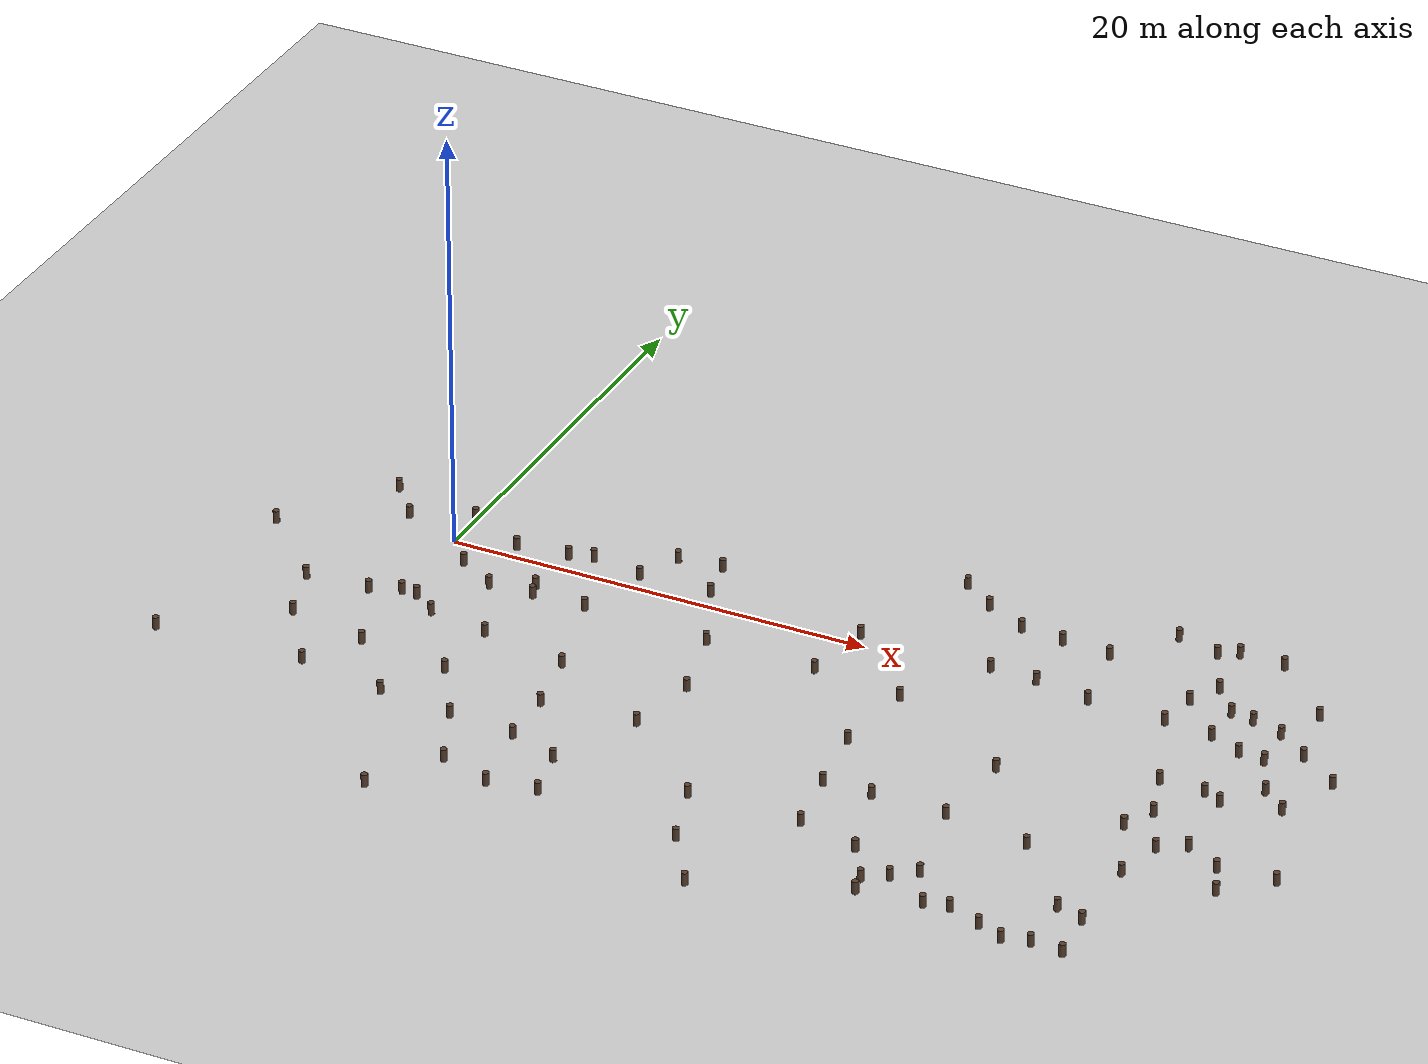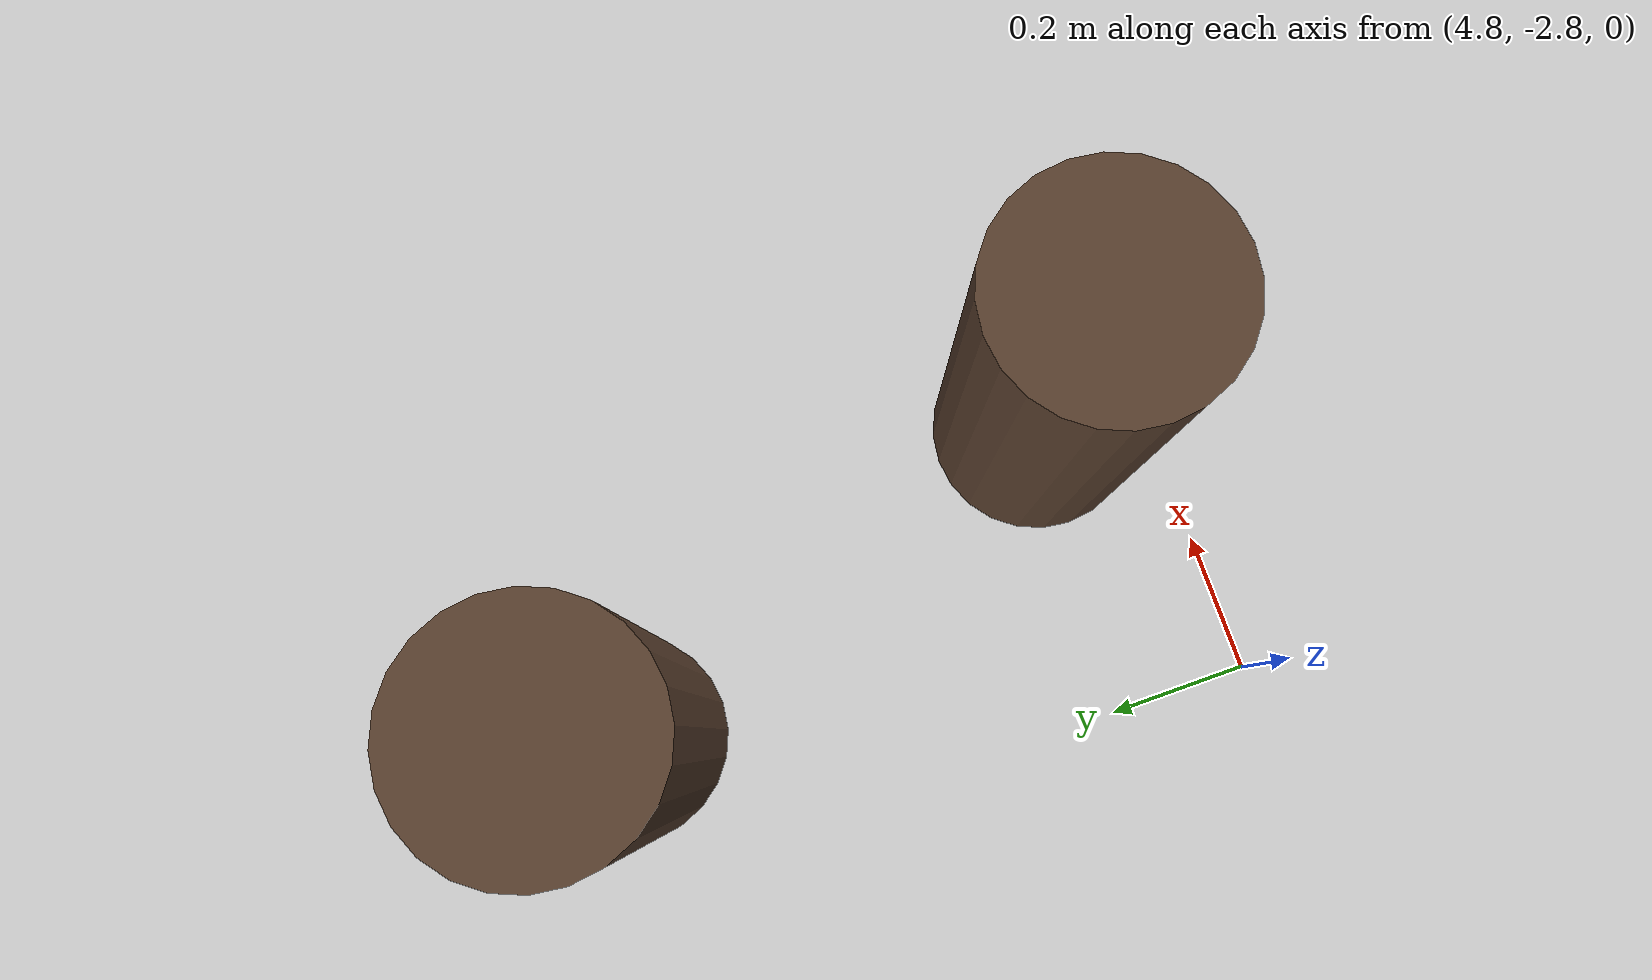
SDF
<?xml version="1.0"?>
<sdf version="1.6">
  <world name="orchard_world">
    <include>
      <uri>model://sun</uri>
    </include>

    <include>
      <uri>model://ground_plane</uri>
    </include>

    <!-- Trees: 103 includes of model://tree_trunk -->
    <include>
      <uri>model://tree_trunk</uri>
      <name>tree_0000</name>
      <pose>21.377842 -20.121744 0 0 0 0</pose>
    </include>
    <include>
      <uri>model://tree_trunk</uri>
      <name>tree_0001</name>
      <pose>5.930867 -19.317856 0 0 0 0</pose>
    </include>
    <include>
      <uri>model://tree_trunk</uri>
      <name>tree_0002</name>
      <pose>34.886902 -18.229172 0 0 0 0</pose>
    </include>
    <include>
      <uri>model://tree_trunk</uri>
      <name>tree_0003</name>
      <pose>37.587269 -18.059940 0 0 0 0</pose>
    </include>
    <include>
      <uri>model://tree_trunk</uri>
      <name>tree_0004</name>
      <pose>36.113663 -17.942070 0 0 0 0</pose>
    </include>
    <include>
      <uri>model://tree_trunk</uri>
      <name>tree_0005</name>
      <pose>33.648663 -17.695705 0 0 0 0</pose>
    </include>
    <include>
      <uri>model://tree_trunk</uri>
      <name>tree_0006</name>
      <pose>27.984146 -17.581209 0 0 0 0</pose>
    </include>
    <include>
      <uri>model://tree_trunk</uri>
      <name>tree_0007</name>
      <pose>30.914196 -17.277401 0 0 0 0</pose>
    </include>
    <include>
      <uri>model://tree_trunk</uri>
      <name>tree_0008</name>
      <pose>19.544012 -17.257883 0 0 0 0</pose>
    </include>
    <include>
      <uri>model://tree_trunk</uri>
      <name>tree_0009</name>
      <pose>32.050774 -17.055559 0 0 0 0</pose>
    </include>
    <include>
      <uri>model://tree_trunk</uri>
      <name>tree_0010</name>
      <pose>10.453001 -16.954826 0 0 0 0</pose>
    </include>
    <include>
      <uri>model://tree_trunk</uri>
      <name>tree_0011</name>
      <pose>27.781012 -16.670900 0 0 0 0</pose>
    </include>
    <include>
      <uri>model://tree_trunk</uri>
      <name>tree_0012</name>
      <pose>12.739023 -16.621220 0 0 0 0</pose>
    </include>
    <include>
      <uri>model://tree_trunk</uri>
      <name>tree_0013</name>
      <pose>7.987421 -16.095158 0 0 0 0</pose>
    </include>
    <include>
      <uri>model://tree_trunk</uri>
      <name>tree_0014</name>
      <pose>28.807619 -16.031342 0 0 0 0</pose>
    </include>
    <include>
      <uri>model://tree_trunk</uri>
      <name>tree_0015</name>
      <pose>37.316322 -15.512968 0 0 0 0</pose>
    </include>
    <include>
      <uri>model://tree_trunk</uri>
      <name>tree_0016</name>
      <pose>29.829248 -15.232237 0 0 0 0</pose>
    </include>
    <include>
      <uri>model://tree_trunk</uri>
      <name>tree_0017</name>
      <pose>35.994633 -15.060971 0 0 0 0</pose>
    </include>
    <include>
      <uri>model://tree_trunk</uri>
      <name>tree_0018</name>
      <pose>26.598637 -14.702311 0 0 0 0</pose>
    </include>
    <include>
      <uri>model://tree_trunk</uri>
      <name>tree_0019</name>
      <pose>12.146017 -14.067697 0 0 0 0</pose>
    </include>
    <include>
      <uri>model://tree_trunk</uri>
      <name>tree_0020</name>
      <pose>18.469704 -14.043028 0 0 0 0</pose>
    </include>
    <include>
      <uri>model://tree_trunk</uri>
      <name>tree_0021</name>
      <pose>23.684628 -13.908031 0 0 0 0</pose>
    </include>
    <include>
      <uri>model://tree_trunk</uri>
      <name>tree_0022</name>
      <pose>9.741977 -13.172966 0 0 0 0</pose>
    </include>
    <include>
      <uri>model://tree_trunk</uri>
      <name>tree_0023</name>
      <pose>6.590414 -12.877033 0 0 0 0</pose>
    </include>
    <include>
      <uri>model://tree_trunk</uri>
      <name>tree_0024</name>
      <pose>3.031172 -12.509090 0 0 0 0</pose>
    </include>
    <include>
      <uri>model://tree_trunk</uri>
      <name>tree_0025</name>
      <pose>-8.162579 -12.150883 0 0 0 0</pose>
    </include>
    <include>
      <uri>model://tree_trunk</uri>
      <name>tree_0026</name>
      <pose>-1.162973 -11.796550 0 0 0 0</pose>
    </include>
    <include>
      <uri>model://tree_trunk</uri>
      <name>tree_0027</name>
      <pose>37.272625 -11.493565 0 0 0 0</pose>
    </include>
    <include>
      <uri>model://tree_trunk</uri>
      <name>tree_0028</name>
      <pose>32.881683 -11.339239 0 0 0 0</pose>
    </include>
    <include>
      <uri>model://tree_trunk</uri>
      <name>tree_0029</name>
      <pose>41.363476 -11.078897 0 0 0 0</pose>
    </include>
    <include>
      <uri>model://tree_trunk</uri>
      <name>tree_0030</name>
      <pose>28.894470 -10.727442 0 0 0 0</pose>
    </include>
    <include>
      <uri>model://tree_trunk</uri>
      <name>tree_0031</name>
      <pose>23.165829 -10.709417 0 0 0 0</pose>
    </include>
    <include>
      <uri>model://tree_trunk</uri>
      <name>tree_0032</name>
      <pose>25.420527 -10.699861 0 0 0 0</pose>
    </include>
    <include>
      <uri>model://tree_trunk</uri>
      <name>tree_0033</name>
      <pose>9.608891 -10.346026 0 0 0 0</pose>
    </include>
    <include>
      <uri>model://tree_trunk</uri>
      <name>tree_0034</name>
      <pose>14.005323 -9.959079 0 0 0 0</pose>
    </include>
    <include>
      <uri>model://tree_trunk</uri>
      <name>tree_0035</name>
      <pose>4.679366 -9.755652 0 0 0 0</pose>
    </include>
    <include>
      <uri>model://tree_trunk</uri>
      <name>tree_0036</name>
      <pose>40.704185 -9.491678 0 0 0 0</pose>
    </include>
    <include>
      <uri>model://tree_trunk</uri>
      <name>tree_0037</name>
      <pose>43.310867 -9.293342 0 0 0 0</pose>
    </include>
    <include>
      <uri>model://tree_trunk</uri>
      <name>tree_0038</name>
      <pose>0.364015 -9.262537 0 0 0 0</pose>
    </include>
    <include>
      <uri>model://tree_trunk</uri>
      <name>tree_0039</name>
      <pose>37.801819 -9.187380 0 0 0 0</pose>
    </include>
    <include>
      <uri>model://tree_trunk</uri>
      <name>tree_0040</name>
      <pose>38.983864 -8.502524 0 0 0 0</pose>
    </include>
    <include>
      <uri>model://tree_trunk</uri>
      <name>tree_0041</name>
      <pose>-3.441047 -8.448119 0 0 0 0</pose>
    </include>
    <include>
      <uri>model://tree_trunk</uri>
      <name>tree_0042</name>
      <pose>35.896111 -8.164883 0 0 0 0</pose>
    </include>
    <include>
      <uri>model://tree_trunk</uri>
      <name>tree_0043</name>
      <pose>22.662876 -7.266358 0 0 0 0</pose>
    </include>
    <include>
      <uri>model://tree_trunk</uri>
      <name>tree_0044</name>
      <pose>9.005826 -7.154064 0 0 0 0</pose>
    </include>
    <include>
      <uri>model://tree_trunk</uri>
      <name>tree_0045</name>
      <pose>36.591274 -6.727829 0 0 0 0</pose>
    </include>
    <include>
      <uri>model://tree_trunk</uri>
      <name>tree_0046</name>
      <pose>14.659624 -6.498687 0 0 0 0</pose>
    </include>
    <include>
      <uri>model://tree_trunk</uri>
      <name>tree_0047</name>
      <pose>29.235010 -6.487582 0 0 0 0</pose>
    </include>
    <include>
      <uri>model://tree_trunk</uri>
      <name>tree_0048</name>
      <pose>4.844571 -6.353862 0 0 0 0</pose>
    </include>
    <include>
      <uri>model://tree_trunk</uri>
      <name>tree_0049</name>
      <pose>1.946399 -5.835737 0 0 0 0</pose>
    </include>
    <include>
      <uri>model://tree_trunk</uri>
      <name>tree_0050</name>
      <pose>-4.366924 -5.560650 0 0 0 0</pose>
    </include>
    <include>
      <uri>model://tree_trunk</uri>
      <name>tree_0051</name>
      <pose>-1.381415 -5.370376 0 0 0 0</pose>
    </include>
    <include>
      <uri>model://tree_trunk</uri>
      <name>tree_0052</name>
      <pose>0.727469 -4.891038 0 0 0 0</pose>
    </include>
    <include>
      <uri>model://tree_trunk</uri>
      <name>tree_0053</name>
      <pose>-0.011154 -4.845277 0 0 0 0</pose>
    </include>
    <include>
      <uri>model://tree_trunk</uri>
      <name>tree_0054</name>
      <pose>38.774067 -4.801353 0 0 0 0</pose>
    </include>
    <include>
      <uri>model://tree_trunk</uri>
      <name>tree_0055</name>
      <pose>37.897789 -4.366522 0 0 0 0</pose>
    </include>
    <include>
      <uri>model://tree_trunk</uri>
      <name>tree_0056</name>
      <pose>35.796585 -4.315566 0 0 0 0</pose>
    </include>
    <include>
      <uri>model://tree_trunk</uri>
      <name>tree_0057</name>
      <pose>41.367760 -4.232024 0 0 0 0</pose>
    </include>
    <include>
      <uri>model://tree_trunk</uri>
      <name>tree_0058</name>
      <pose>23.167639 -3.159774 0 0 0 0</pose>
    </include>
    <include>
      <uri>model://tree_trunk</uri>
      <name>tree_0059</name>
      <pose>40.124405 -3.127106 0 0 0 0</pose>
    </include>
    <include>
      <uri>model://tree_trunk</uri>
      <name>tree_0060</name>
      <pose>18.910484 -2.766523 0 0 0 0</pose>
    </include>
    <include>
      <uri>model://tree_trunk</uri>
      <name>tree_0061</name>
      <pose>13.728316 -2.757223 0 0 0 0</pose>
    </include>
    <include>
      <uri>model://tree_trunk</uri>
      <name>tree_0062</name>
      <pose>3.156880 -2.737474 0 0 0 0</pose>
    </include>
    <include>
      <uri>model://tree_trunk</uri>
      <name>tree_0063</name>
      <pose>5.232767 -2.640633 0 0 0 0</pose>
    </include>
    <include>
      <uri>model://tree_trunk</uri>
      <name>tree_0064</name>
      <pose>7.729800 -2.560039 0 0 0 0</pose>
    </include>
    <include>
      <uri>model://tree_trunk</uri>
      <name>tree_0065</name>
      <pose>-7.830864 -1.974111 0 0 0 0</pose>
    </include>
    <include>
      <uri>model://tree_trunk</uri>
      <name>tree_0066</name>
      <pose>5.002844 -1.923335 0 0 0 0</pose>
    </include>
    <include>
      <uri>model://tree_trunk</uri>
      <name>tree_0067</name>
      <pose>1.271444 -1.534753 0 0 0 0</pose>
    </include>
    <include>
      <uri>model://tree_trunk</uri>
      <name>tree_0068</name>
      <pose>42.459793 -1.414577 0 0 0 0</pose>
    </include>
    <include>
      <uri>model://tree_trunk</uri>
      <name>tree_0069</name>
      <pose>39.148071 -1.001817 0 0 0 0</pose>
    </include>
    <include>
      <uri>model://tree_trunk</uri>
      <name>tree_0070</name>
      <pose>37.927887 -0.869176 0 0 0 0</pose>
    </include>
    <include>
      <uri>model://tree_trunk</uri>
      <name>tree_0071</name>
      <pose>36.354004 -0.160259 0 0 0 0</pose>
    </include>
    <include>
      <uri>model://tree_trunk</uri>
      <name>tree_0072</name>
      <pose>40.516308 0.038896 0 0 0 0</pose>
    </include>
    <include>
      <uri>model://tree_trunk</uri>
      <name>tree_0073</name>
      <pose>34.084187 0.058502 0 0 0 0</pose>
    </include>
    <include>
      <uri>model://tree_trunk</uri>
      <name>tree_0074</name>
      <pose>30.469440 0.134880 0 0 0 0</pose>
    </include>
    <include>
      <uri>model://tree_trunk</uri>
      <name>tree_0075</name>
      <pose>27.834452 0.592652 0 0 0 0</pose>
    </include>
    <include>
      <uri>model://tree_trunk</uri>
      <name>tree_0076</name>
      <pose>25.645279 0.657190 0 0 0 0</pose>
    </include>
    <include>
      <uri>model://tree_trunk</uri>
      <name>tree_0077</name>
      <pose>19.472973 0.673376 0 0 0 0</pose>
    </include>
    <include>
      <uri>model://tree_trunk</uri>
      <name>tree_0078</name>
      <pose>2.742132 0.682405 0 0 0 0</pose>
    </include>
    <include>
      <uri>model://tree_trunk</uri>
      <name>tree_0079</name>
      <pose>8.709839 0.815817 0 0 0 0</pose>
    </include>
    <include>
      <uri>model://tree_trunk</uri>
      <name>tree_0080</name>
      <pose>12.106457 0.910330 0 0 0 0</pose>
    </include>
    <include>
      <uri>model://tree_trunk</uri>
      <name>tree_0081</name>
      <pose>5.147019 0.963361 0 0 0 0</pose>
    </include>
    <include>
      <uri>model://tree_trunk</uri>
      <name>tree_0082</name>
      <pose>-2.767682 1.005253 0 0 0 0</pose>
    </include>
    <include>
      <uri>model://tree_trunk</uri>
      <name>tree_0083</name>
      <pose>38.962769 1.226704 0 0 0 0</pose>
    </include>
    <include>
      <uri>model://tree_trunk</uri>
      <name>tree_0084</name>
      <pose>6.236626 1.283653 0 0 0 0</pose>
    </include>
    <include>
      <uri>model://tree_trunk</uri>
      <name>tree_0085</name>
      <pose>37.458435 1.719093 0 0 0 0</pose>
    </include>
    <include>
      <uri>model://tree_trunk</uri>
      <name>tree_0086</name>
      <pose>36.366333 1.893331 0 0 0 0</pose>
    </include>
    <include>
      <uri>model://tree_trunk</uri>
      <name>tree_0087</name>
      <pose>34.390522 2.019416 0 0 0 0</pose>
    </include>
    <include>
      <uri>model://tree_trunk</uri>
      <name>tree_0088</name>
      <pose>-0.044158 2.100175 0 0 0 0</pose>
    </include>
    <include>
      <uri>model://tree_trunk</uri>
      <name>tree_0089</name>
      <pose>9.582534 2.817138 0 0 0 0</pose>
    </include>
    <include>
      <uri>model://tree_trunk</uri>
      <name>tree_0090</name>
      <pose>-4.259954 2.842739 0 0 0 0</pose>
    </include>
    <include>
      <uri>model://tree_trunk</uri>
      <name>tree_0091</name>
      <pose>11.653130 3.024271 0 0 0 0</pose>
    </include>
    <include>
      <uri>model://tree_trunk</uri>
      <name>tree_0092</name>
      <pose>39.859497 3.294459 0 0 0 0</pose>
    </include>
    <include>
      <uri>model://tree_trunk</uri>
      <name>tree_0093</name>
      <pose>35.149128 3.456811 0 0 0 0</pose>
    </include>
    <include>
      <uri>model://tree_trunk</uri>
      <name>tree_0094</name>
      <pose>29.804314 3.868732 0 0 0 0</pose>
    </include>
    <include>
      <uri>model://tree_trunk</uri>
      <name>tree_0095</name>
      <pose>27.507050 4.040522 0 0 0 0</pose>
    </include>
    <include>
      <uri>model://tree_trunk</uri>
      <name>tree_0096</name>
      <pose>25.478260 4.229532 0 0 0 0</pose>
    </include>
    <include>
      <uri>model://tree_trunk</uri>
      <name>tree_0097</name>
      <pose>23.463524 5.254856 0 0 0 0</pose>
    </include>
    <include>
      <uri>model://tree_trunk</uri>
      <name>tree_0098</name>
      <pose>33.921638 5.983415 0 0 0 0</pose>
    </include>
    <include>
      <uri>model://tree_trunk</uri>
      <name>tree_0099</name>
      <pose>36.894756 6.405047 0 0 0 0</pose>
    </include>
    <include>
      <uri>model://tree_trunk</uri>
      <name>tree_0100</name>
      <pose>34.788685 6.450793 0 0 0 0</pose>
    </include>
    <include>
      <uri>model://tree_trunk</uri>
      <name>tree_0101</name>
      <pose>21.870583 6.456689 0 0 0 0</pose>
    </include>
    <include>
      <uri>model://tree_trunk</uri>
      <name>tree_0102</name>
      <pose>31.876072 6.554668 0 0 0 0</pose>
    </include>
  </world>
</sdf>

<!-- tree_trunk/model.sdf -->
<sdf version="1.6">
  <model name="tree_trunk">
    <static>true</static>
    <link name="link">
      <collision name="trunk_collision">
        <pose>0 0 0.30 0 0 0</pose>
        <geometry>
          <cylinder>
            <radius>0.15</radius>
            <length>0.60</length>
          </cylinder>
        </geometry>
      </collision>
      <visual name="trunk_visual">
        <pose>0 0 0.30 0 0 0</pose>
        <geometry>
          <cylinder>
            <radius>0.15</radius>
            <length>0.60</length>
          </cylinder>
        </geometry>
        <material>
          <ambient>0.25 0.18 0.12 1</ambient>
          <diffuse>0.35 0.25 0.18 1</diffuse>
        </material>
      </visual>
    </link>
  </model>
</sdf>
